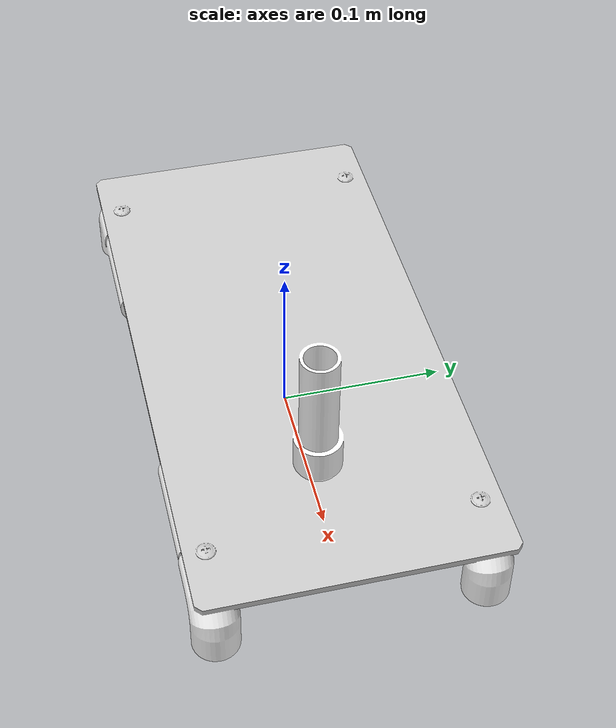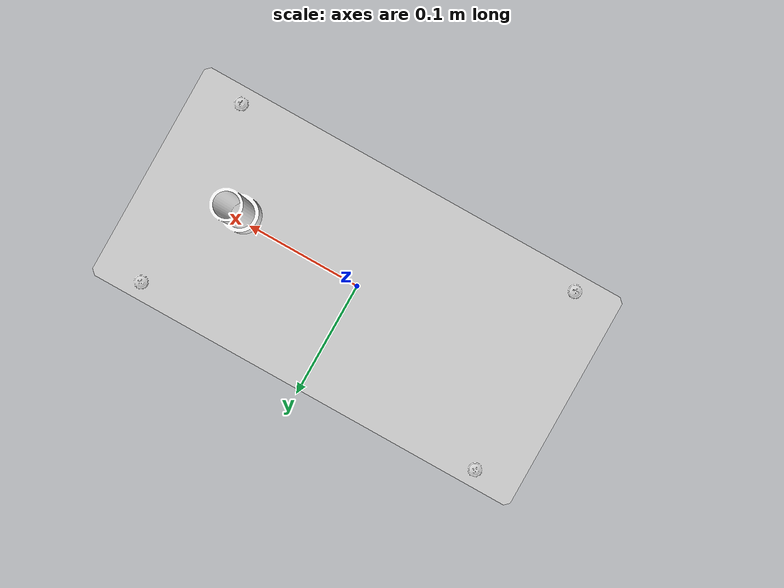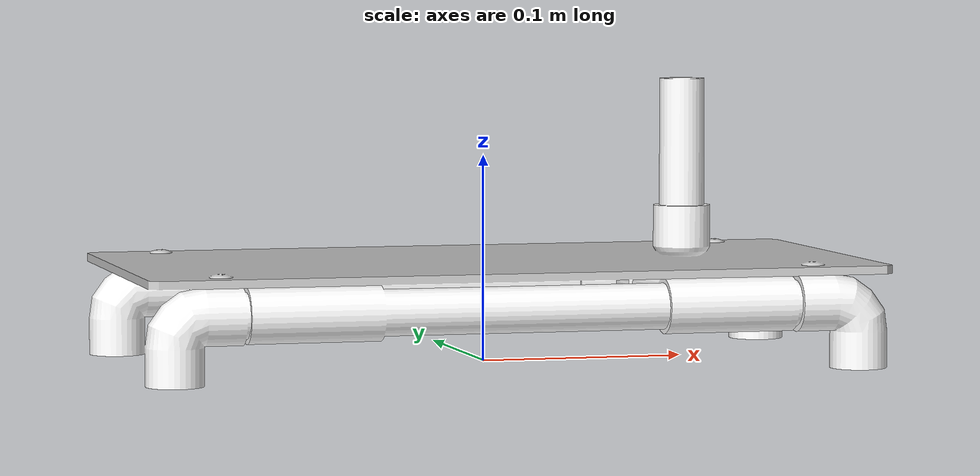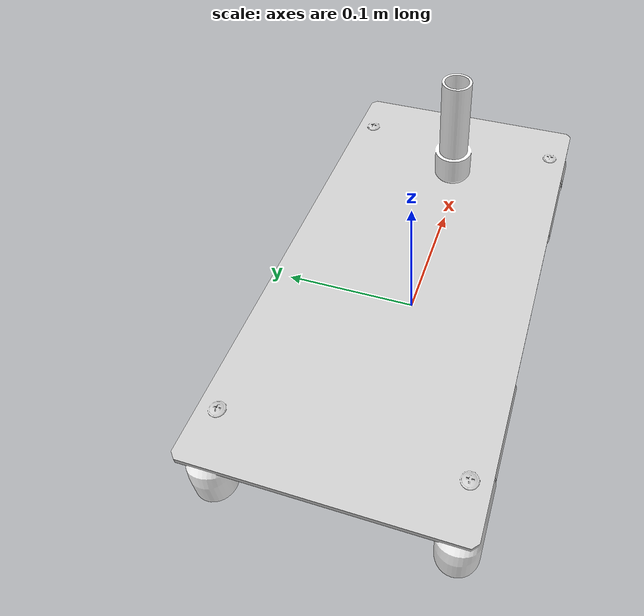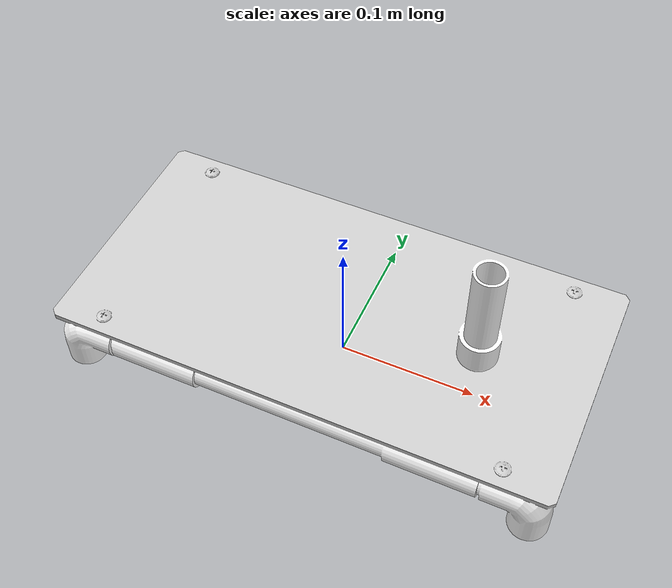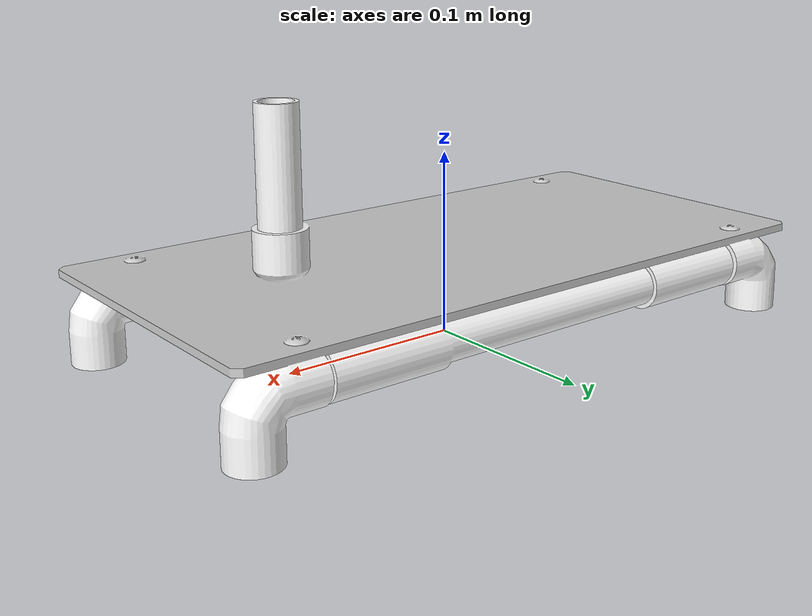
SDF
<?xml version='1.0' encoding='UTF-8'?>
<sdf version="1.6">
    <model name="coral_nursery_base">
        <pose>0 0 0 0 0 0</pose>
        <static>true</static>

        <link name="base_link">
            <pose>0 0 0 0 0 0</pose>
            <visual name="base_link_visual">
              <geometry>
                <mesh>
                  <uri>model://coral_nursery_base/meshes/coral_restoration_nursery_base.dae</uri>
                </mesh>
              </geometry>
            </visual>

        </link>

    </model>
</sdf>
